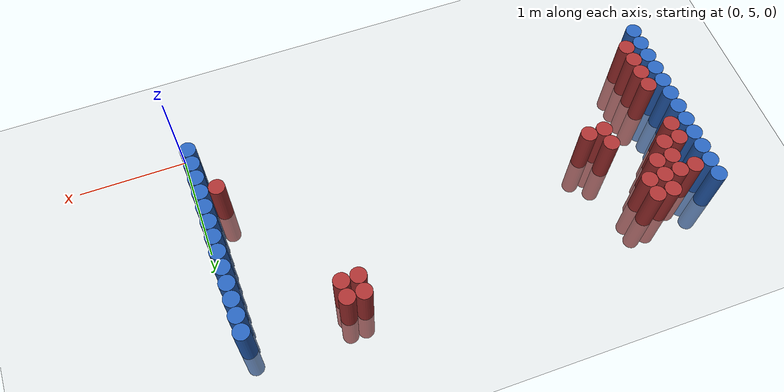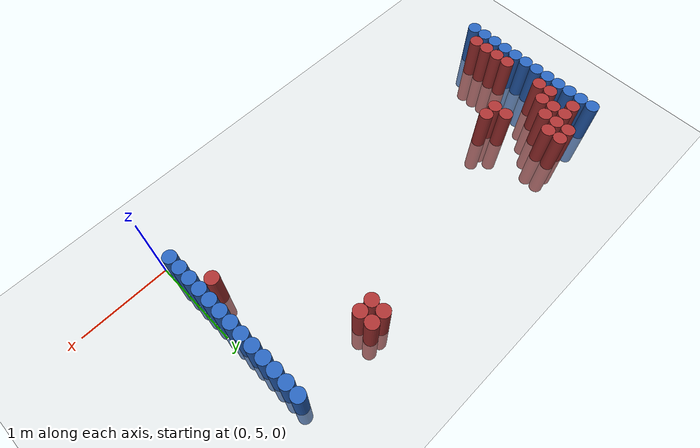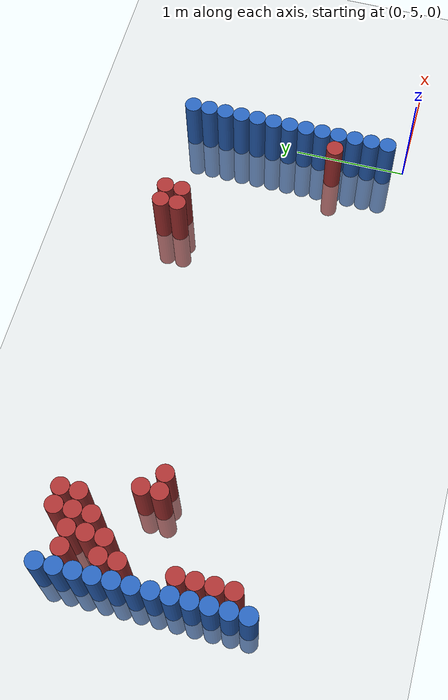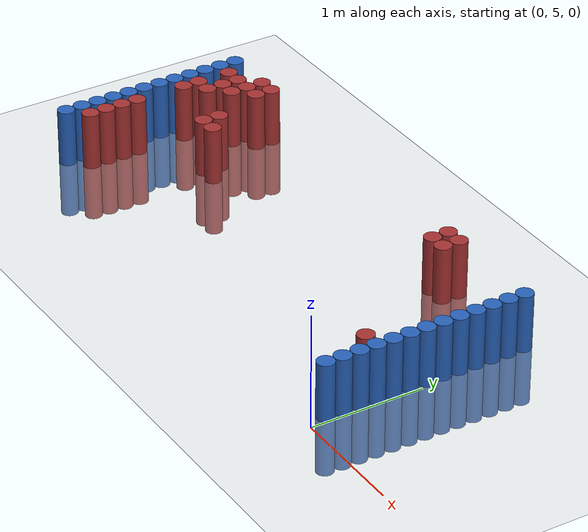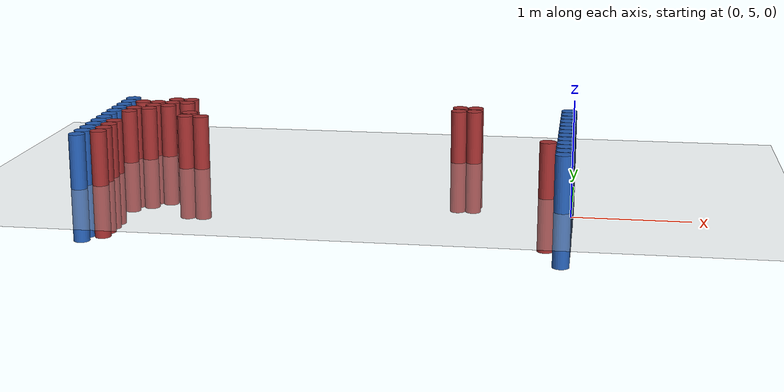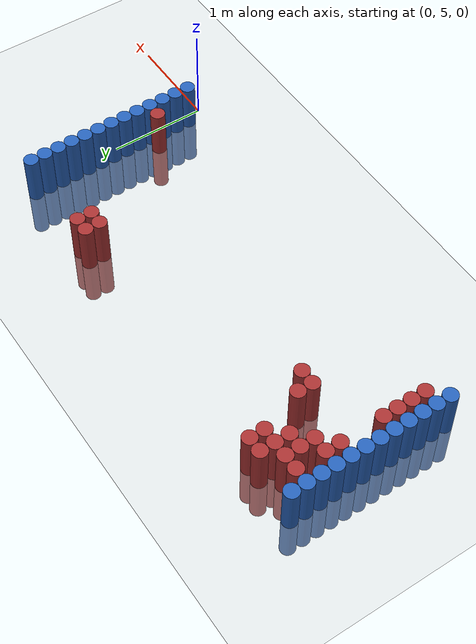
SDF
<sdf version="1.6">
 <world name="default">
  <model name="ground_plane">
   <static>1</static>
   <link name="link">
    <collision name="collision">
     <geometry><plane><normal>0 0 1</normal><size>100 100</size></plane></geometry>
     <surface><friction><ode><mu>100</mu><mu2>50</mu2></ode></friction></surface>
    </collision>
    <visual name="visual">
     <cast_shadows>0</cast_shadows>
     <geometry><plane><normal>0 0 1</normal><size>100 100</size></plane></geometry>
     <material>
      <script><uri>file://media/materials/scripts/gazebo.material</uri><name>Gazebo/Grey</name></script>
     </material>
    </visual>
   </link>
  </model>
  <model name="unit_cylinder_97">
   <static>1</static>
   <pose>-4.425000 5.325000 0.000000 0.000000 0.000000 0.000000</pose>
   <link name="link">
    <inertial>
     <mass>1</mass>
     <inertia><ixx>0.145833</ixx><ixy>0</ixy><ixz>0</ixz><iyy>0.145833</iyy><iyz>0</iyz><izz>0.125</izz></inertia>
    </inertial>
    <collision name="collision">
     <geometry><cylinder><radius>0.075000</radius><length>1</length></cylinder></geometry>
    </collision>
    <visual name="visual">
     <geometry><cylinder><radius>0.075000</radius><length>1</length></cylinder></geometry>
     <material>
      <ambient>0.152000 0.379000 0.720000 1</ambient>
      <diffuse>0.152000 0.379000 0.720000 1</diffuse>
     </material>
     <material>
      <script><name>Gazebo/Grey</name><uri>file://media/materials/scripts/gazebo.material</uri></script>
     </material>
    </visual>
   </link>
  </model>
  <model name="unit_cylinder_98">
   <static>1</static>
   <pose>-4.425000 5.475000 0.000000 0.000000 0.000000 0.000000</pose>
   <link name="link">
    <inertial>
     <mass>1</mass>
     <inertia><ixx>0.145833</ixx><ixy>0</ixy><ixz>0</ixz><iyy>0.145833</iyy><iyz>0</iyz><izz>0.125</izz></inertia>
    </inertial>
    <collision name="collision">
     <geometry><cylinder><radius>0.075000</radius><length>1</length></cylinder></geometry>
    </collision>
    <visual name="visual">
     <geometry><cylinder><radius>0.075000</radius><length>1</length></cylinder></geometry>
     <material>
      <ambient>0.152000 0.379000 0.720000 1</ambient>
      <diffuse>0.152000 0.379000 0.720000 1</diffuse>
     </material>
     <material>
      <script><name>Gazebo/Grey</name><uri>file://media/materials/scripts/gazebo.material</uri></script>
     </material>
    </visual>
   </link>
  </model>
  <model name="unit_cylinder_99">
   <static>1</static>
   <pose>-4.425000 5.625000 0.000000 0.000000 0.000000 0.000000</pose>
   <link name="link">
    <inertial>
     <mass>1</mass>
     <inertia><ixx>0.145833</ixx><ixy>0</ixy><ixz>0</ixz><iyy>0.145833</iyy><iyz>0</iyz><izz>0.125</izz></inertia>
    </inertial>
    <collision name="collision">
     <geometry><cylinder><radius>0.075000</radius><length>1</length></cylinder></geometry>
    </collision>
    <visual name="visual">
     <geometry><cylinder><radius>0.075000</radius><length>1</length></cylinder></geometry>
     <material>
      <ambient>0.152000 0.379000 0.720000 1</ambient>
      <diffuse>0.152000 0.379000 0.720000 1</diffuse>
     </material>
     <material>
      <script><name>Gazebo/Grey</name><uri>file://media/materials/scripts/gazebo.material</uri></script>
     </material>
    </visual>
   </link>
  </model>
  <model name="unit_cylinder_100">
   <static>1</static>
   <pose>-4.425000 5.775000 0.000000 0.000000 0.000000 0.000000</pose>
   <link name="link">
    <inertial>
     <mass>1</mass>
     <inertia><ixx>0.145833</ixx><ixy>0</ixy><ixz>0</ixz><iyy>0.145833</iyy><iyz>0</iyz><izz>0.125</izz></inertia>
    </inertial>
    <collision name="collision">
     <geometry><cylinder><radius>0.075000</radius><length>1</length></cylinder></geometry>
    </collision>
    <visual name="visual">
     <geometry><cylinder><radius>0.075000</radius><length>1</length></cylinder></geometry>
     <material>
      <ambient>0.152000 0.379000 0.720000 1</ambient>
      <diffuse>0.152000 0.379000 0.720000 1</diffuse>
     </material>
     <material>
      <script><name>Gazebo/Grey</name><uri>file://media/materials/scripts/gazebo.material</uri></script>
     </material>
    </visual>
   </link>
  </model>
  <model name="unit_cylinder_101">
   <static>1</static>
   <pose>-4.425000 5.925000 0.000000 0.000000 0.000000 0.000000</pose>
   <link name="link">
    <inertial>
     <mass>1</mass>
     <inertia><ixx>0.145833</ixx><ixy>0</ixy><ixz>0</ixz><iyy>0.145833</iyy><iyz>0</iyz><izz>0.125</izz></inertia>
    </inertial>
    <collision name="collision">
     <geometry><cylinder><radius>0.075000</radius><length>1</length></cylinder></geometry>
    </collision>
    <visual name="visual">
     <geometry><cylinder><radius>0.075000</radius><length>1</length></cylinder></geometry>
     <material>
      <ambient>0.152000 0.379000 0.720000 1</ambient>
      <diffuse>0.152000 0.379000 0.720000 1</diffuse>
     </material>
     <material>
      <script><name>Gazebo/Grey</name><uri>file://media/materials/scripts/gazebo.material</uri></script>
     </material>
    </visual>
   </link>
  </model>
  <model name="unit_cylinder_102">
   <static>1</static>
   <pose>-4.425000 6.075000 0.000000 0.000000 0.000000 0.000000</pose>
   <link name="link">
    <inertial>
     <mass>1</mass>
     <inertia><ixx>0.145833</ixx><ixy>0</ixy><ixz>0</ixz><iyy>0.145833</iyy><iyz>0</iyz><izz>0.125</izz></inertia>
    </inertial>
    <collision name="collision">
     <geometry><cylinder><radius>0.075000</radius><length>1</length></cylinder></geometry>
    </collision>
    <visual name="visual">
     <geometry><cylinder><radius>0.075000</radius><length>1</length></cylinder></geometry>
     <material>
      <ambient>0.152000 0.379000 0.720000 1</ambient>
      <diffuse>0.152000 0.379000 0.720000 1</diffuse>
     </material>
     <material>
      <script><name>Gazebo/Grey</name><uri>file://media/materials/scripts/gazebo.material</uri></script>
     </material>
    </visual>
   </link>
  </model>
  <model name="unit_cylinder_103">
   <static>1</static>
   <pose>-4.425000 6.225000 0.000000 0.000000 0.000000 0.000000</pose>
   <link name="link">
    <inertial>
     <mass>1</mass>
     <inertia><ixx>0.145833</ixx><ixy>0</ixy><ixz>0</ixz><iyy>0.145833</iyy><iyz>0</iyz><izz>0.125</izz></inertia>
    </inertial>
    <collision name="collision">
     <geometry><cylinder><radius>0.075000</radius><length>1</length></cylinder></geometry>
    </collision>
    <visual name="visual">
     <geometry><cylinder><radius>0.075000</radius><length>1</length></cylinder></geometry>
     <material>
      <ambient>0.152000 0.379000 0.720000 1</ambient>
      <diffuse>0.152000 0.379000 0.720000 1</diffuse>
     </material>
     <material>
      <script><name>Gazebo/Grey</name><uri>file://media/materials/scripts/gazebo.material</uri></script>
     </material>
    </visual>
   </link>
  </model>
  <model name="unit_cylinder_104">
   <static>1</static>
   <pose>-4.425000 6.375000 0.000000 0.000000 0.000000 0.000000</pose>
   <link name="link">
    <inertial>
     <mass>1</mass>
     <inertia><ixx>0.145833</ixx><ixy>0</ixy><ixz>0</ixz><iyy>0.145833</iyy><iyz>0</iyz><izz>0.125</izz></inertia>
    </inertial>
    <collision name="collision">
     <geometry><cylinder><radius>0.075000</radius><length>1</length></cylinder></geometry>
    </collision>
    <visual name="visual">
     <geometry><cylinder><radius>0.075000</radius><length>1</length></cylinder></geometry>
     <material>
      <ambient>0.152000 0.379000 0.720000 1</ambient>
      <diffuse>0.152000 0.379000 0.720000 1</diffuse>
     </material>
     <material>
      <script><name>Gazebo/Grey</name><uri>file://media/materials/scripts/gazebo.material</uri></script>
     </material>
    </visual>
   </link>
  </model>
  <model name="unit_cylinder_105">
   <static>1</static>
   <pose>-4.425000 6.525000 0.000000 0.000000 0.000000 0.000000</pose>
   <link name="link">
    <inertial>
     <mass>1</mass>
     <inertia><ixx>0.145833</ixx><ixy>0</ixy><ixz>0</ixz><iyy>0.145833</iyy><iyz>0</iyz><izz>0.125</izz></inertia>
    </inertial>
    <collision name="collision">
     <geometry><cylinder><radius>0.075000</radius><length>1</length></cylinder></geometry>
    </collision>
    <visual name="visual">
     <geometry><cylinder><radius>0.075000</radius><length>1</length></cylinder></geometry>
     <material>
      <ambient>0.152000 0.379000 0.720000 1</ambient>
      <diffuse>0.152000 0.379000 0.720000 1</diffuse>
     </material>
     <material>
      <script><name>Gazebo/Grey</name><uri>file://media/materials/scripts/gazebo.material</uri></script>
     </material>
    </visual>
   </link>
  </model>
  <model name="unit_cylinder_106">
   <static>1</static>
   <pose>-4.425000 6.675000 0.000000 0.000000 0.000000 0.000000</pose>
   <link name="link">
    <inertial>
     <mass>1</mass>
     <inertia><ixx>0.145833</ixx><ixy>0</ixy><ixz>0</ixz><iyy>0.145833</iyy><iyz>0</iyz><izz>0.125</izz></inertia>
    </inertial>
    <collision name="collision">
     <geometry><cylinder><radius>0.075000</radius><length>1</length></cylinder></geometry>
    </collision>
    <visual name="visual">
     <geometry><cylinder><radius>0.075000</radius><length>1</length></cylinder></geometry>
     <material>
      <ambient>0.152000 0.379000 0.720000 1</ambient>
      <diffuse>0.152000 0.379000 0.720000 1</diffuse>
     </material>
     <material>
      <script><name>Gazebo/Grey</name><uri>file://media/materials/scripts/gazebo.material</uri></script>
     </material>
    </visual>
   </link>
  </model>
  <model name="unit_cylinder_107">
   <static>1</static>
   <pose>-4.425000 6.825000 0.000000 0.000000 0.000000 0.000000</pose>
   <link name="link">
    <inertial>
     <mass>1</mass>
     <inertia><ixx>0.145833</ixx><ixy>0</ixy><ixz>0</ixz><iyy>0.145833</iyy><iyz>0</iyz><izz>0.125</izz></inertia>
    </inertial>
    <collision name="collision">
     <geometry><cylinder><radius>0.075000</radius><length>1</length></cylinder></geometry>
    </collision>
    <visual name="visual">
     <geometry><cylinder><radius>0.075000</radius><length>1</length></cylinder></geometry>
     <material>
      <ambient>0.152000 0.379000 0.720000 1</ambient>
      <diffuse>0.152000 0.379000 0.720000 1</diffuse>
     </material>
     <material>
      <script><name>Gazebo/Grey</name><uri>file://media/materials/scripts/gazebo.material</uri></script>
     </material>
    </visual>
   </link>
  </model>
  <model name="unit_cylinder_108">
   <static>1</static>
   <pose>-4.425000 6.975000 0.000000 0.000000 0.000000 0.000000</pose>
   <link name="link">
    <inertial>
     <mass>1</mass>
     <inertia><ixx>0.145833</ixx><ixy>0</ixy><ixz>0</ixz><iyy>0.145833</iyy><iyz>0</iyz><izz>0.125</izz></inertia>
    </inertial>
    <collision name="collision">
     <geometry><cylinder><radius>0.075000</radius><length>1</length></cylinder></geometry>
    </collision>
    <visual name="visual">
     <geometry><cylinder><radius>0.075000</radius><length>1</length></cylinder></geometry>
     <material>
      <ambient>0.152000 0.379000 0.720000 1</ambient>
      <diffuse>0.152000 0.379000 0.720000 1</diffuse>
     </material>
     <material>
      <script><name>Gazebo/Grey</name><uri>file://media/materials/scripts/gazebo.material</uri></script>
     </material>
    </visual>
   </link>
  </model>
  <model name="unit_cylinder_126">
   <static>1</static>
   <pose>-4.275000 5.475000 0.000000 0.000000 0.000000 0.000000</pose>
   <link name="link">
    <inertial>
     <mass>1</mass>
     <inertia><ixx>0.145833</ixx><ixy>0</ixy><ixz>0</ixz><iyy>0.145833</iyy><iyz>0</iyz><izz>0.125</izz></inertia>
    </inertial>
    <collision name="collision">
     <geometry><cylinder><radius>0.075000</radius><length>1</length></cylinder></geometry>
    </collision>
    <visual name="visual">
     <geometry><cylinder><radius>0.075000</radius><length>1</length></cylinder></geometry>
     <material>
      <ambient>0.648000 0.192000 0.192000 1</ambient>
      <diffuse>0.648000 0.192000 0.192000 1</diffuse>
     </material>
     <material>
      <script><name>Gazebo/Grey</name><uri>file://media/materials/scripts/gazebo.material</uri></script>
     </material>
    </visual>
   </link>
  </model>
  <model name="unit_cylinder_127">
   <static>1</static>
   <pose>-4.275000 5.625000 0.000000 0.000000 0.000000 0.000000</pose>
   <link name="link">
    <inertial>
     <mass>1</mass>
     <inertia><ixx>0.145833</ixx><ixy>0</ixy><ixz>0</ixz><iyy>0.145833</iyy><iyz>0</iyz><izz>0.125</izz></inertia>
    </inertial>
    <collision name="collision">
     <geometry><cylinder><radius>0.075000</radius><length>1</length></cylinder></geometry>
    </collision>
    <visual name="visual">
     <geometry><cylinder><radius>0.075000</radius><length>1</length></cylinder></geometry>
     <material>
      <ambient>0.648000 0.192000 0.192000 1</ambient>
      <diffuse>0.648000 0.192000 0.192000 1</diffuse>
     </material>
     <material>
      <script><name>Gazebo/Grey</name><uri>file://media/materials/scripts/gazebo.material</uri></script>
     </material>
    </visual>
   </link>
  </model>
  <model name="unit_cylinder_128">
   <static>1</static>
   <pose>-4.275000 5.775000 0.000000 0.000000 0.000000 0.000000</pose>
   <link name="link">
    <inertial>
     <mass>1</mass>
     <inertia><ixx>0.145833</ixx><ixy>0</ixy><ixz>0</ixz><iyy>0.145833</iyy><iyz>0</iyz><izz>0.125</izz></inertia>
    </inertial>
    <collision name="collision">
     <geometry><cylinder><radius>0.075000</radius><length>1</length></cylinder></geometry>
    </collision>
    <visual name="visual">
     <geometry><cylinder><radius>0.075000</radius><length>1</length></cylinder></geometry>
     <material>
      <ambient>0.648000 0.192000 0.192000 1</ambient>
      <diffuse>0.648000 0.192000 0.192000 1</diffuse>
     </material>
     <material>
      <script><name>Gazebo/Grey</name><uri>file://media/materials/scripts/gazebo.material</uri></script>
     </material>
    </visual>
   </link>
  </model>
  <model name="unit_cylinder_129">
   <static>1</static>
   <pose>-4.275000 5.925000 0.000000 0.000000 0.000000 0.000000</pose>
   <link name="link">
    <inertial>
     <mass>1</mass>
     <inertia><ixx>0.145833</ixx><ixy>0</ixy><ixz>0</ixz><iyy>0.145833</iyy><iyz>0</iyz><izz>0.125</izz></inertia>
    </inertial>
    <collision name="collision">
     <geometry><cylinder><radius>0.075000</radius><length>1</length></cylinder></geometry>
    </collision>
    <visual name="visual">
     <geometry><cylinder><radius>0.075000</radius><length>1</length></cylinder></geometry>
     <material>
      <ambient>0.648000 0.192000 0.192000 1</ambient>
      <diffuse>0.648000 0.192000 0.192000 1</diffuse>
     </material>
     <material>
      <script><name>Gazebo/Grey</name><uri>file://media/materials/scripts/gazebo.material</uri></script>
     </material>
    </visual>
   </link>
  </model>
  <model name="unit_cylinder_130">
   <static>1</static>
   <pose>-4.275000 6.375000 0.000000 0.000000 0.000000 0.000000</pose>
   <link name="link">
    <inertial>
     <mass>1</mass>
     <inertia><ixx>0.145833</ixx><ixy>0</ixy><ixz>0</ixz><iyy>0.145833</iyy><iyz>0</iyz><izz>0.125</izz></inertia>
    </inertial>
    <collision name="collision">
     <geometry><cylinder><radius>0.075000</radius><length>1</length></cylinder></geometry>
    </collision>
    <visual name="visual">
     <geometry><cylinder><radius>0.075000</radius><length>1</length></cylinder></geometry>
     <material>
      <ambient>0.648000 0.192000 0.192000 1</ambient>
      <diffuse>0.648000 0.192000 0.192000 1</diffuse>
     </material>
     <material>
      <script><name>Gazebo/Grey</name><uri>file://media/materials/scripts/gazebo.material</uri></script>
     </material>
    </visual>
   </link>
  </model>
  <model name="unit_cylinder_131">
   <static>1</static>
   <pose>-4.275000 6.525000 0.000000 0.000000 0.000000 0.000000</pose>
   <link name="link">
    <inertial>
     <mass>1</mass>
     <inertia><ixx>0.145833</ixx><ixy>0</ixy><ixz>0</ixz><iyy>0.145833</iyy><iyz>0</iyz><izz>0.125</izz></inertia>
    </inertial>
    <collision name="collision">
     <geometry><cylinder><radius>0.075000</radius><length>1</length></cylinder></geometry>
    </collision>
    <visual name="visual">
     <geometry><cylinder><radius>0.075000</radius><length>1</length></cylinder></geometry>
     <material>
      <ambient>0.648000 0.192000 0.192000 1</ambient>
      <diffuse>0.648000 0.192000 0.192000 1</diffuse>
     </material>
     <material>
      <script><name>Gazebo/Grey</name><uri>file://media/materials/scripts/gazebo.material</uri></script>
     </material>
    </visual>
   </link>
  </model>
  <model name="unit_cylinder_132">
   <static>1</static>
   <pose>-4.275000 6.825000 0.000000 0.000000 0.000000 0.000000</pose>
   <link name="link">
    <inertial>
     <mass>1</mass>
     <inertia><ixx>0.145833</ixx><ixy>0</ixy><ixz>0</ixz><iyy>0.145833</iyy><iyz>0</iyz><izz>0.125</izz></inertia>
    </inertial>
    <collision name="collision">
     <geometry><cylinder><radius>0.075000</radius><length>1</length></cylinder></geometry>
    </collision>
    <visual name="visual">
     <geometry><cylinder><radius>0.075000</radius><length>1</length></cylinder></geometry>
     <material>
      <ambient>0.648000 0.192000 0.192000 1</ambient>
      <diffuse>0.648000 0.192000 0.192000 1</diffuse>
     </material>
     <material>
      <script><name>Gazebo/Grey</name><uri>file://media/materials/scripts/gazebo.material</uri></script>
     </material>
    </visual>
   </link>
  </model>
  <model name="unit_cylinder_142">
   <static>1</static>
   <pose>-4.125000 6.525000 0.000000 0.000000 0.000000 0.000000</pose>
   <link name="link">
    <inertial>
     <mass>1</mass>
     <inertia><ixx>0.145833</ixx><ixy>0</ixy><ixz>0</ixz><iyy>0.145833</iyy><iyz>0</iyz><izz>0.125</izz></inertia>
    </inertial>
    <collision name="collision">
     <geometry><cylinder><radius>0.075000</radius><length>1</length></cylinder></geometry>
    </collision>
    <visual name="visual">
     <geometry><cylinder><radius>0.075000</radius><length>1</length></cylinder></geometry>
     <material>
      <ambient>0.648000 0.192000 0.192000 1</ambient>
      <diffuse>0.648000 0.192000 0.192000 1</diffuse>
     </material>
     <material>
      <script><name>Gazebo/Grey</name><uri>file://media/materials/scripts/gazebo.material</uri></script>
     </material>
    </visual>
   </link>
  </model>
  <model name="unit_cylinder_143">
   <static>1</static>
   <pose>-4.125000 6.675000 0.000000 0.000000 0.000000 0.000000</pose>
   <link name="link">
    <inertial>
     <mass>1</mass>
     <inertia><ixx>0.145833</ixx><ixy>0</ixy><ixz>0</ixz><iyy>0.145833</iyy><iyz>0</iyz><izz>0.125</izz></inertia>
    </inertial>
    <collision name="collision">
     <geometry><cylinder><radius>0.075000</radius><length>1</length></cylinder></geometry>
    </collision>
    <visual name="visual">
     <geometry><cylinder><radius>0.075000</radius><length>1</length></cylinder></geometry>
     <material>
      <ambient>0.648000 0.192000 0.192000 1</ambient>
      <diffuse>0.648000 0.192000 0.192000 1</diffuse>
     </material>
     <material>
      <script><name>Gazebo/Grey</name><uri>file://media/materials/scripts/gazebo.material</uri></script>
     </material>
    </visual>
   </link>
  </model>
  <model name="unit_cylinder_144">
   <static>1</static>
   <pose>-4.125000 6.825000 0.000000 0.000000 0.000000 0.000000</pose>
   <link name="link">
    <inertial>
     <mass>1</mass>
     <inertia><ixx>0.145833</ixx><ixy>0</ixy><ixz>0</ixz><iyy>0.145833</iyy><iyz>0</iyz><izz>0.125</izz></inertia>
    </inertial>
    <collision name="collision">
     <geometry><cylinder><radius>0.075000</radius><length>1</length></cylinder></geometry>
    </collision>
    <visual name="visual">
     <geometry><cylinder><radius>0.075000</radius><length>1</length></cylinder></geometry>
     <material>
      <ambient>0.648000 0.192000 0.192000 1</ambient>
      <diffuse>0.648000 0.192000 0.192000 1</diffuse>
     </material>
     <material>
      <script><name>Gazebo/Grey</name><uri>file://media/materials/scripts/gazebo.material</uri></script>
     </material>
    </visual>
   </link>
  </model>
  <model name="unit_cylinder_149">
   <static>1</static>
   <pose>-3.975000 6.675000 0.000000 0.000000 0.000000 0.000000</pose>
   <link name="link">
    <inertial>
     <mass>1</mass>
     <inertia><ixx>0.145833</ixx><ixy>0</ixy><ixz>0</ixz><iyy>0.145833</iyy><iyz>0</iyz><izz>0.125</izz></inertia>
    </inertial>
    <collision name="collision">
     <geometry><cylinder><radius>0.075000</radius><length>1</length></cylinder></geometry>
    </collision>
    <visual name="visual">
     <geometry><cylinder><radius>0.075000</radius><length>1</length></cylinder></geometry>
     <material>
      <ambient>0.648000 0.192000 0.192000 1</ambient>
      <diffuse>0.648000 0.192000 0.192000 1</diffuse>
     </material>
     <material>
      <script><name>Gazebo/Grey</name><uri>file://media/materials/scripts/gazebo.material</uri></script>
     </material>
    </visual>
   </link>
  </model>
  <model name="unit_cylinder_150">
   <static>1</static>
   <pose>-3.975000 6.825000 0.000000 0.000000 0.000000 0.000000</pose>
   <link name="link">
    <inertial>
     <mass>1</mass>
     <inertia><ixx>0.145833</ixx><ixy>0</ixy><ixz>0</ixz><iyy>0.145833</iyy><iyz>0</iyz><izz>0.125</izz></inertia>
    </inertial>
    <collision name="collision">
     <geometry><cylinder><radius>0.075000</radius><length>1</length></cylinder></geometry>
    </collision>
    <visual name="visual">
     <geometry><cylinder><radius>0.075000</radius><length>1</length></cylinder></geometry>
     <material>
      <ambient>0.648000 0.192000 0.192000 1</ambient>
      <diffuse>0.648000 0.192000 0.192000 1</diffuse>
     </material>
     <material>
      <script><name>Gazebo/Grey</name><uri>file://media/materials/scripts/gazebo.material</uri></script>
     </material>
    </visual>
   </link>
  </model>
  <model name="unit_cylinder_151">
   <static>1</static>
   <pose>-3.975000 6.975000 0.000000 0.000000 0.000000 0.000000</pose>
   <link name="link">
    <inertial>
     <mass>1</mass>
     <inertia><ixx>0.145833</ixx><ixy>0</ixy><ixz>0</ixz><iyy>0.145833</iyy><iyz>0</iyz><izz>0.125</izz></inertia>
    </inertial>
    <collision name="collision">
     <geometry><cylinder><radius>0.075000</radius><length>1</length></cylinder></geometry>
    </collision>
    <visual name="visual">
     <geometry><cylinder><radius>0.075000</radius><length>1</length></cylinder></geometry>
     <material>
      <ambient>0.648000 0.192000 0.192000 1</ambient>
      <diffuse>0.648000 0.192000 0.192000 1</diffuse>
     </material>
     <material>
      <script><name>Gazebo/Grey</name><uri>file://media/materials/scripts/gazebo.material</uri></script>
     </material>
    </visual>
   </link>
  </model>
  <model name="unit_cylinder_152">
   <static>1</static>
   <pose>-3.825000 6.825000 0.000000 0.000000 0.000000 0.000000</pose>
   <link name="link">
    <inertial>
     <mass>1</mass>
     <inertia><ixx>0.145833</ixx><ixy>0</ixy><ixz>0</ixz><iyy>0.145833</iyy><iyz>0</iyz><izz>0.125</izz></inertia>
    </inertial>
    <collision name="collision">
     <geometry><cylinder><radius>0.075000</radius><length>1</length></cylinder></geometry>
    </collision>
    <visual name="visual">
     <geometry><cylinder><radius>0.075000</radius><length>1</length></cylinder></geometry>
     <material>
      <ambient>0.648000 0.192000 0.192000 1</ambient>
      <diffuse>0.648000 0.192000 0.192000 1</diffuse>
     </material>
     <material>
      <script><name>Gazebo/Grey</name><uri>file://media/materials/scripts/gazebo.material</uri></script>
     </material>
    </visual>
   </link>
  </model>
  <model name="unit_cylinder_153">
   <static>1</static>
   <pose>-3.825000 6.975000 0.000000 0.000000 0.000000 0.000000</pose>
   <link name="link">
    <inertial>
     <mass>1</mass>
     <inertia><ixx>0.145833</ixx><ixy>0</ixy><ixz>0</ixz><iyy>0.145833</iyy><iyz>0</iyz><izz>0.125</izz></inertia>
    </inertial>
    <collision name="collision">
     <geometry><cylinder><radius>0.075000</radius><length>1</length></cylinder></geometry>
    </collision>
    <visual name="visual">
     <geometry><cylinder><radius>0.075000</radius><length>1</length></cylinder></geometry>
     <material>
      <ambient>0.648000 0.192000 0.192000 1</ambient>
      <diffuse>0.648000 0.192000 0.192000 1</diffuse>
     </material>
     <material>
      <script><name>Gazebo/Grey</name><uri>file://media/materials/scripts/gazebo.material</uri></script>
     </material>
    </visual>
   </link>
  </model>
  <model name="unit_cylinder_154">
   <static>1</static>
   <pose>-3.675000 6.225000 0.000000 0.000000 0.000000 0.000000</pose>
   <link name="link">
    <inertial>
     <mass>1</mass>
     <inertia><ixx>0.145833</ixx><ixy>0</ixy><ixz>0</ixz><iyy>0.145833</iyy><iyz>0</iyz><izz>0.125</izz></inertia>
    </inertial>
    <collision name="collision">
     <geometry><cylinder><radius>0.075000</radius><length>1</length></cylinder></geometry>
    </collision>
    <visual name="visual">
     <geometry><cylinder><radius>0.075000</radius><length>1</length></cylinder></geometry>
     <material>
      <ambient>0.648000 0.192000 0.192000 1</ambient>
      <diffuse>0.648000 0.192000 0.192000 1</diffuse>
     </material>
     <material>
      <script><name>Gazebo/Grey</name><uri>file://media/materials/scripts/gazebo.material</uri></script>
     </material>
    </visual>
   </link>
  </model>
  <model name="unit_cylinder_155">
   <static>1</static>
   <pose>-3.675000 6.375000 0.000000 0.000000 0.000000 0.000000</pose>
   <link name="link">
    <inertial>
     <mass>1</mass>
     <inertia><ixx>0.145833</ixx><ixy>0</ixy><ixz>0</ixz><iyy>0.145833</iyy><iyz>0</iyz><izz>0.125</izz></inertia>
    </inertial>
    <collision name="collision">
     <geometry><cylinder><radius>0.075000</radius><length>1</length></cylinder></geometry>
    </collision>
    <visual name="visual">
     <geometry><cylinder><radius>0.075000</radius><length>1</length></cylinder></geometry>
     <material>
      <ambient>0.648000 0.192000 0.192000 1</ambient>
      <diffuse>0.648000 0.192000 0.192000 1</diffuse>
     </material>
     <material>
      <script><name>Gazebo/Grey</name><uri>file://media/materials/scripts/gazebo.material</uri></script>
     </material>
    </visual>
   </link>
  </model>
  <model name="unit_cylinder_156">
   <static>1</static>
   <pose>-3.525000 6.225000 0.000000 0.000000 0.000000 0.000000</pose>
   <link name="link">
    <inertial>
     <mass>1</mass>
     <inertia><ixx>0.145833</ixx><ixy>0</ixy><ixz>0</ixz><iyy>0.145833</iyy><iyz>0</iyz><izz>0.125</izz></inertia>
    </inertial>
    <collision name="collision">
     <geometry><cylinder><radius>0.075000</radius><length>1</length></cylinder></geometry>
    </collision>
    <visual name="visual">
     <geometry><cylinder><radius>0.075000</radius><length>1</length></cylinder></geometry>
     <material>
      <ambient>0.648000 0.192000 0.192000 1</ambient>
      <diffuse>0.648000 0.192000 0.192000 1</diffuse>
     </material>
     <material>
      <script><name>Gazebo/Grey</name><uri>file://media/materials/scripts/gazebo.material</uri></script>
     </material>
    </visual>
   </link>
  </model>
  <model name="unit_cylinder_181">
   <static>1</static>
   <pose>-1.125000 6.825000 0.000000 0.000000 0.000000 0.000000</pose>
   <link name="link">
    <inertial>
     <mass>1</mass>
     <inertia><ixx>0.145833</ixx><ixy>0</ixy><ixz>0</ixz><iyy>0.145833</iyy><iyz>0</iyz><izz>0.125</izz></inertia>
    </inertial>
    <collision name="collision">
     <geometry><cylinder><radius>0.075000</radius><length>1</length></cylinder></geometry>
    </collision>
    <visual name="visual">
     <geometry><cylinder><radius>0.075000</radius><length>1</length></cylinder></geometry>
     <material>
      <ambient>0.648000 0.192000 0.192000 1</ambient>
      <diffuse>0.648000 0.192000 0.192000 1</diffuse>
     </material>
     <material>
      <script><name>Gazebo/Grey</name><uri>file://media/materials/scripts/gazebo.material</uri></script>
     </material>
    </visual>
   </link>
  </model>
  <model name="unit_cylinder_182">
   <static>1</static>
   <pose>-1.125000 6.975000 0.000000 0.000000 0.000000 0.000000</pose>
   <link name="link">
    <inertial>
     <mass>1</mass>
     <inertia><ixx>0.145833</ixx><ixy>0</ixy><ixz>0</ixz><iyy>0.145833</iyy><iyz>0</iyz><izz>0.125</izz></inertia>
    </inertial>
    <collision name="collision">
     <geometry><cylinder><radius>0.075000</radius><length>1</length></cylinder></geometry>
    </collision>
    <visual name="visual">
     <geometry><cylinder><radius>0.075000</radius><length>1</length></cylinder></geometry>
     <material>
      <ambient>0.648000 0.192000 0.192000 1</ambient>
      <diffuse>0.648000 0.192000 0.192000 1</diffuse>
     </material>
     <material>
      <script><name>Gazebo/Grey</name><uri>file://media/materials/scripts/gazebo.material</uri></script>
     </material>
    </visual>
   </link>
  </model>
  <model name="unit_cylinder_185">
   <static>1</static>
   <pose>-0.975000 6.825000 0.000000 0.000000 0.000000 0.000000</pose>
   <link name="link">
    <inertial>
     <mass>1</mass>
     <inertia><ixx>0.145833</ixx><ixy>0</ixy><ixz>0</ixz><iyy>0.145833</iyy><iyz>0</iyz><izz>0.125</izz></inertia>
    </inertial>
    <collision name="collision">
     <geometry><cylinder><radius>0.075000</radius><length>1</length></cylinder></geometry>
    </collision>
    <visual name="visual">
     <geometry><cylinder><radius>0.075000</radius><length>1</length></cylinder></geometry>
     <material>
      <ambient>0.648000 0.192000 0.192000 1</ambient>
      <diffuse>0.648000 0.192000 0.192000 1</diffuse>
     </material>
     <material>
      <script><name>Gazebo/Grey</name><uri>file://media/materials/scripts/gazebo.material</uri></script>
     </material>
    </visual>
   </link>
  </model>
  <model name="unit_cylinder_186">
   <static>1</static>
   <pose>-0.975000 6.975000 0.000000 0.000000 0.000000 0.000000</pose>
   <link name="link">
    <inertial>
     <mass>1</mass>
     <inertia><ixx>0.145833</ixx><ixy>0</ixy><ixz>0</ixz><iyy>0.145833</iyy><iyz>0</iyz><izz>0.125</izz></inertia>
    </inertial>
    <collision name="collision">
     <geometry><cylinder><radius>0.075000</radius><length>1</length></cylinder></geometry>
    </collision>
    <visual name="visual">
     <geometry><cylinder><radius>0.075000</radius><length>1</length></cylinder></geometry>
     <material>
      <ambient>0.648000 0.192000 0.192000 1</ambient>
      <diffuse>0.648000 0.192000 0.192000 1</diffuse>
     </material>
     <material>
      <script><name>Gazebo/Grey</name><uri>file://media/materials/scripts/gazebo.material</uri></script>
     </material>
    </visual>
   </link>
  </model>
  <model name="unit_cylinder_199">
   <static>1</static>
   <pose>-0.225000 5.625000 0.000000 0.000000 0.000000 0.000000</pose>
   <link name="link">
    <inertial>
     <mass>1</mass>
     <inertia><ixx>0.145833</ixx><ixy>0</ixy><ixz>0</ixz><iyy>0.145833</iyy><iyz>0</iyz><izz>0.125</izz></inertia>
    </inertial>
    <collision name="collision">
     <geometry><cylinder><radius>0.075000</radius><length>1</length></cylinder></geometry>
    </collision>
    <visual name="visual">
     <geometry><cylinder><radius>0.075000</radius><length>1</length></cylinder></geometry>
     <material>
      <ambient>0.648000 0.192000 0.192000 1</ambient>
      <diffuse>0.648000 0.192000 0.192000 1</diffuse>
     </material>
     <material>
      <script><name>Gazebo/Grey</name><uri>file://media/materials/scripts/gazebo.material</uri></script>
     </material>
    </visual>
   </link>
  </model>
  <model name="unit_cylinder_212">
   <static>1</static>
   <pose>-0.075000 5.175000 0.000000 0.000000 0.000000 0.000000</pose>
   <link name="link">
    <inertial>
     <mass>1</mass>
     <inertia><ixx>0.145833</ixx><ixy>0</ixy><ixz>0</ixz><iyy>0.145833</iyy><iyz>0</iyz><izz>0.125</izz></inertia>
    </inertial>
    <collision name="collision">
     <geometry><cylinder><radius>0.075000</radius><length>1</length></cylinder></geometry>
    </collision>
    <visual name="visual">
     <geometry><cylinder><radius>0.075000</radius><length>1</length></cylinder></geometry>
     <material>
      <ambient>0.152000 0.379000 0.720000 1</ambient>
      <diffuse>0.152000 0.379000 0.720000 1</diffuse>
     </material>
     <material>
      <script><name>Gazebo/Grey</name><uri>file://media/materials/scripts/gazebo.material</uri></script>
     </material>
    </visual>
   </link>
  </model>
  <model name="unit_cylinder_213">
   <static>1</static>
   <pose>-0.075000 5.325000 0.000000 0.000000 0.000000 0.000000</pose>
   <link name="link">
    <inertial>
     <mass>1</mass>
     <inertia><ixx>0.145833</ixx><ixy>0</ixy><ixz>0</ixz><iyy>0.145833</iyy><iyz>0</iyz><izz>0.125</izz></inertia>
    </inertial>
    <collision name="collision">
     <geometry><cylinder><radius>0.075000</radius><length>1</length></cylinder></geometry>
    </collision>
    <visual name="visual">
     <geometry><cylinder><radius>0.075000</radius><length>1</length></cylinder></geometry>
     <material>
      <ambient>0.152000 0.379000 0.720000 1</ambient>
      <diffuse>0.152000 0.379000 0.720000 1</diffuse>
     </material>
     <material>
      <script><name>Gazebo/Grey</name><uri>file://media/materials/scripts/gazebo.material</uri></script>
     </material>
    </visual>
   </link>
  </model>
  <model name="unit_cylinder_214">
   <static>1</static>
   <pose>-0.075000 5.475000 0.000000 0.000000 0.000000 0.000000</pose>
   <link name="link">
    <inertial>
     <mass>1</mass>
     <inertia><ixx>0.145833</ixx><ixy>0</ixy><ixz>0</ixz><iyy>0.145833</iyy><iyz>0</iyz><izz>0.125</izz></inertia>
    </inertial>
    <collision name="collision">
     <geometry><cylinder><radius>0.075000</radius><length>1</length></cylinder></geometry>
    </collision>
    <visual name="visual">
     <geometry><cylinder><radius>0.075000</radius><length>1</length></cylinder></geometry>
     <material>
      <ambient>0.152000 0.379000 0.720000 1</ambient>
      <diffuse>0.152000 0.379000 0.720000 1</diffuse>
     </material>
     <material>
      <script><name>Gazebo/Grey</name><uri>file://media/materials/scripts/gazebo.material</uri></script>
     </material>
    </visual>
   </link>
  </model>
  <model name="unit_cylinder_215">
   <static>1</static>
   <pose>-0.075000 5.625000 0.000000 0.000000 0.000000 0.000000</pose>
   <link name="link">
    <inertial>
     <mass>1</mass>
     <inertia><ixx>0.145833</ixx><ixy>0</ixy><ixz>0</ixz><iyy>0.145833</iyy><iyz>0</iyz><izz>0.125</izz></inertia>
    </inertial>
    <collision name="collision">
     <geometry><cylinder><radius>0.075000</radius><length>1</length></cylinder></geometry>
    </collision>
    <visual name="visual">
     <geometry><cylinder><radius>0.075000</radius><length>1</length></cylinder></geometry>
     <material>
      <ambient>0.152000 0.379000 0.720000 1</ambient>
      <diffuse>0.152000 0.379000 0.720000 1</diffuse>
     </material>
     <material>
      <script><name>Gazebo/Grey</name><uri>file://media/materials/scripts/gazebo.material</uri></script>
     </material>
    </visual>
   </link>
  </model>
  <model name="unit_cylinder_216">
   <static>1</static>
   <pose>-0.075000 5.775000 0.000000 0.000000 0.000000 0.000000</pose>
   <link name="link">
    <inertial>
     <mass>1</mass>
     <inertia><ixx>0.145833</ixx><ixy>0</ixy><ixz>0</ixz><iyy>0.145833</iyy><iyz>0</iyz><izz>0.125</izz></inertia>
    </inertial>
    <collision name="collision">
     <geometry><cylinder><radius>0.075000</radius><length>1</length></cylinder></geometry>
    </collision>
    <visual name="visual">
     <geometry><cylinder><radius>0.075000</radius><length>1</length></cylinder></geometry>
     <material>
      <ambient>0.152000 0.379000 0.720000 1</ambient>
      <diffuse>0.152000 0.379000 0.720000 1</diffuse>
     </material>
     <material>
      <script><name>Gazebo/Grey</name><uri>file://media/materials/scripts/gazebo.material</uri></script>
     </material>
    </visual>
   </link>
  </model>
  <model name="unit_cylinder_217">
   <static>1</static>
   <pose>-0.075000 5.925000 0.000000 0.000000 0.000000 0.000000</pose>
   <link name="link">
    <inertial>
     <mass>1</mass>
     <inertia><ixx>0.145833</ixx><ixy>0</ixy><ixz>0</ixz><iyy>0.145833</iyy><iyz>0</iyz><izz>0.125</izz></inertia>
    </inertial>
    <collision name="collision">
     <geometry><cylinder><radius>0.075000</radius><length>1</length></cylinder></geometry>
    </collision>
    <visual name="visual">
     <geometry><cylinder><radius>0.075000</radius><length>1</length></cylinder></geometry>
     <material>
      <ambient>0.152000 0.379000 0.720000 1</ambient>
      <diffuse>0.152000 0.379000 0.720000 1</diffuse>
     </material>
     <material>
      <script><name>Gazebo/Grey</name><uri>file://media/materials/scripts/gazebo.material</uri></script>
     </material>
    </visual>
   </link>
  </model>
  <model name="unit_cylinder_218">
   <static>1</static>
   <pose>-0.075000 6.075000 0.000000 0.000000 0.000000 0.000000</pose>
   <link name="link">
    <inertial>
     <mass>1</mass>
     <inertia><ixx>0.145833</ixx><ixy>0</ixy><ixz>0</ixz><iyy>0.145833</iyy><iyz>0</iyz><izz>0.125</izz></inertia>
    </inertial>
    <collision name="collision">
     <geometry><cylinder><radius>0.075000</radius><length>1</length></cylinder></geometry>
    </collision>
    <visual name="visual">
     <geometry><cylinder><radius>0.075000</radius><length>1</length></cylinder></geometry>
     <material>
      <ambient>0.152000 0.379000 0.720000 1</ambient>
      <diffuse>0.152000 0.379000 0.720000 1</diffuse>
     </material>
     <material>
      <script><name>Gazebo/Grey</name><uri>file://media/materials/scripts/gazebo.material</uri></script>
     </material>
    </visual>
   </link>
  </model>
  <model name="unit_cylinder_219">
   <static>1</static>
   <pose>-0.075000 6.225000 0.000000 0.000000 0.000000 0.000000</pose>
   <link name="link">
    <inertial>
     <mass>1</mass>
     <inertia><ixx>0.145833</ixx><ixy>0</ixy><ixz>0</ixz><iyy>0.145833</iyy><iyz>0</iyz><izz>0.125</izz></inertia>
    </inertial>
    <collision name="collision">
     <geometry><cylinder><radius>0.075000</radius><length>1</length></cylinder></geometry>
    </collision>
    <visual name="visual">
     <geometry><cylinder><radius>0.075000</radius><length>1</length></cylinder></geometry>
     <material>
      <ambient>0.152000 0.379000 0.720000 1</ambient>
      <diffuse>0.152000 0.379000 0.720000 1</diffuse>
     </material>
     <material>
      <script><name>Gazebo/Grey</name><uri>file://media/materials/scripts/gazebo.material</uri></script>
     </material>
    </visual>
   </link>
  </model>
  <model name="unit_cylinder_220">
   <static>1</static>
   <pose>-0.075000 6.375000 0.000000 0.000000 0.000000 0.000000</pose>
   <link name="link">
    <inertial>
     <mass>1</mass>
     <inertia><ixx>0.145833</ixx><ixy>0</ixy><ixz>0</ixz><iyy>0.145833</iyy><iyz>0</iyz><izz>0.125</izz></inertia>
    </inertial>
    <collision name="collision">
     <geometry><cylinder><radius>0.075000</radius><length>1</length></cylinder></geometry>
    </collision>
    <visual name="visual">
     <geometry><cylinder><radius>0.075000</radius><length>1</length></cylinder></geometry>
     <material>
      <ambient>0.152000 0.379000 0.720000 1</ambient>
      <diffuse>0.152000 0.379000 0.720000 1</diffuse>
     </material>
     <material>
      <script><name>Gazebo/Grey</name><uri>file://media/materials/scripts/gazebo.material</uri></script>
     </material>
    </visual>
   </link>
  </model>
  <model name="unit_cylinder_221">
   <static>1</static>
   <pose>-0.075000 6.525000 0.000000 0.000000 0.000000 0.000000</pose>
   <link name="link">
    <inertial>
     <mass>1</mass>
     <inertia><ixx>0.145833</ixx><ixy>0</ixy><ixz>0</ixz><iyy>0.145833</iyy><iyz>0</iyz><izz>0.125</izz></inertia>
    </inertial>
    <collision name="collision">
     <geometry><cylinder><radius>0.075000</radius><length>1</length></cylinder></geometry>
    </collision>
    <visual name="visual">
     <geometry><cylinder><radius>0.075000</radius><length>1</length></cylinder></geometry>
     <material>
      <ambient>0.152000 0.379000 0.720000 1</ambient>
      <diffuse>0.152000 0.379000 0.720000 1</diffuse>
     </material>
     <material>
      <script><name>Gazebo/Grey</name><uri>file://media/materials/scripts/gazebo.material</uri></script>
     </material>
    </visual>
   </link>
  </model>
  <model name="unit_cylinder_222">
   <static>1</static>
   <pose>-0.075000 6.675000 0.000000 0.000000 0.000000 0.000000</pose>
   <link name="link">
    <inertial>
     <mass>1</mass>
     <inertia><ixx>0.145833</ixx><ixy>0</ixy><ixz>0</ixz><iyy>0.145833</iyy><iyz>0</iyz><izz>0.125</izz></inertia>
    </inertial>
    <collision name="collision">
     <geometry><cylinder><radius>0.075000</radius><length>1</length></cylinder></geometry>
    </collision>
    <visual name="visual">
     <geometry><cylinder><radius>0.075000</radius><length>1</length></cylinder></geometry>
     <material>
      <ambient>0.152000 0.379000 0.720000 1</ambient>
      <diffuse>0.152000 0.379000 0.720000 1</diffuse>
     </material>
     <material>
      <script><name>Gazebo/Grey</name><uri>file://media/materials/scripts/gazebo.material</uri></script>
     </material>
    </visual>
   </link>
  </model>
  <model name="unit_cylinder_223">
   <static>1</static>
   <pose>-0.075000 6.825000 0.000000 0.000000 0.000000 0.000000</pose>
   <link name="link">
    <inertial>
     <mass>1</mass>
     <inertia><ixx>0.145833</ixx><ixy>0</ixy><ixz>0</ixz><iyy>0.145833</iyy><iyz>0</iyz><izz>0.125</izz></inertia>
    </inertial>
    <collision name="collision">
     <geometry><cylinder><radius>0.075000</radius><length>1</length></cylinder></geometry>
    </collision>
    <visual name="visual">
     <geometry><cylinder><radius>0.075000</radius><length>1</length></cylinder></geometry>
     <material>
      <ambient>0.152000 0.379000 0.720000 1</ambient>
      <diffuse>0.152000 0.379000 0.720000 1</diffuse>
     </material>
     <material>
      <script><name>Gazebo/Grey</name><uri>file://media/materials/scripts/gazebo.material</uri></script>
     </material>
    </visual>
   </link>
  </model>
  <model name="unit_cylinder_224">
   <static>1</static>
   <pose>-0.075000 6.975000 0.000000 0.000000 0.000000 0.000000</pose>
   <link name="link">
    <inertial>
     <mass>1</mass>
     <inertia><ixx>0.145833</ixx><ixy>0</ixy><ixz>0</ixz><iyy>0.145833</iyy><iyz>0</iyz><izz>0.125</izz></inertia>
    </inertial>
    <collision name="collision">
     <geometry><cylinder><radius>0.075000</radius><length>1</length></cylinder></geometry>
    </collision>
    <visual name="visual">
     <geometry><cylinder><radius>0.075000</radius><length>1</length></cylinder></geometry>
     <material>
      <ambient>0.152000 0.379000 0.720000 1</ambient>
      <diffuse>0.152000 0.379000 0.720000 1</diffuse>
     </material>
     <material>
      <script><name>Gazebo/Grey</name><uri>file://media/materials/scripts/gazebo.material</uri></script>
     </material>
    </visual>
   </link>
  </model>
 </world>
</sdf>
